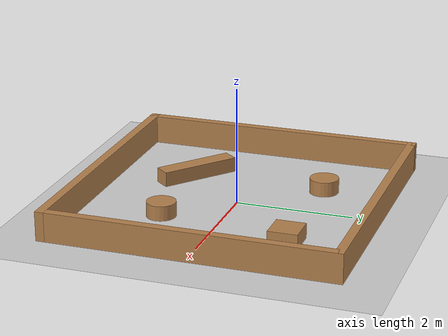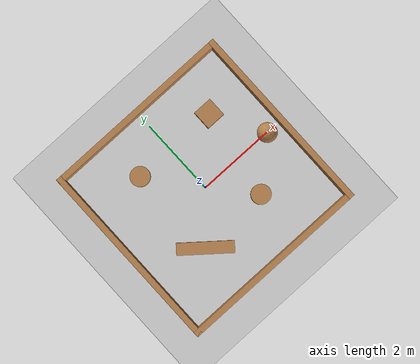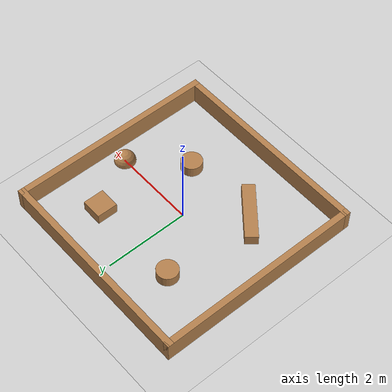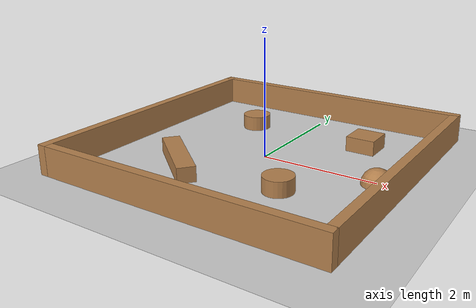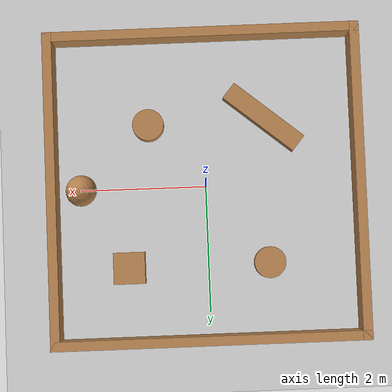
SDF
<sdf version="1.7">
 <world name="default">
  <light name="sun" type="directional">
   <pose>0 0 10 0 -0 0</pose>
   <diffuse>0.8 0.8 0.8 1</diffuse>
   <specular>0.2 0.2 0.2 1</specular>
   <attenuation>
    <range>1000</range>
    <constant>0.9</constant>
    <linear>0.01</linear>
    <quadratic>0.001</quadratic>
   </attenuation>
   <direction>-0.5 0.1 -0.9</direction>
   <spot><inner_angle>0</inner_angle><outer_angle>0</outer_angle><falloff>0</falloff></spot>
  </light>
  <model name="ground_plane">
   <static>1</static>
   <link name="link">
    <collision name="collision">
     <geometry><plane><normal>0 0 1</normal><size>100 100</size></plane></geometry>
     <surface>
      <contact><collide_bitmask>65535</collide_bitmask></contact>
      <friction><ode><mu>100</mu><mu2>50</mu2></ode></friction>
     </surface>
    </collision>
    <visual name="visual">
     <cast_shadows>0</cast_shadows>
     <geometry><plane><normal>0 0 1</normal><size>100 100</size></plane></geometry>
     <material>
      <script><uri>file://media/materials/scripts/gazebo.material</uri><name>Gazebo/Grey</name></script>
     </material>
    </visual>
   </link>
  </model>
  <physics type="ode">
   <real_time_update_rate>1000</real_time_update_rate>
   <max_step_size>0.001</max_step_size>
   <real_time_factor>1</real_time_factor>
   <ode>
    <solver>
     <type>quick</type>
     <iters>150</iters>
     <precon_iters>0</precon_iters>
     <sor>1.4</sor>
     <use_dynamic_moi_rescaling>1</use_dynamic_moi_rescaling>
    </solver>
    <constraints>
     <cfm>1e-05</cfm>
     <erp>0.2</erp>
     <contact_max_correcting_vel>2000</contact_max_correcting_vel>
     <contact_surface_layer>0.01</contact_surface_layer>
    </constraints>
   </ode>
  </physics>
  <model name="turtlebot3_plaza_empty">
   <link name="Wall_1">
    <collision name="Wall_0_Collision">
     <geometry><box><size>5 0.15 0.5</size></box></geometry>
     <pose>0 0 0.25 0 -0 0</pose>
    </collision>
    <visual name="Wall_0_Visual">
     <pose>0 0 0.25 0 -0 0</pose>
     <geometry><box><size>5 0.15 0.5</size></box></geometry>
     <material>
      <script><uri>file://media/materials/scripts/gazebo.material</uri><name>Gazebo/Wood</name></script>
      <ambient>1 1 1 1</ambient>
     </material>
    </visual>
    <pose>-2.425 0 0 0 -0 1.5708</pose>
   </link>
   <link name="Wall_2">
    <collision name="Wall_2_Collision">
     <geometry><box><size>5 0.15 0.5</size></box></geometry>
     <pose>0 0 0.25 0 -0 0</pose>
    </collision>
    <visual name="Wall_2_Visual">
     <pose>0 0 0.25 0 -0 0</pose>
     <geometry><box><size>5 0.15 0.5</size></box></geometry>
     <material>
      <script><uri>file://media/materials/scripts/gazebo.material</uri><name>Gazebo/Wood</name></script>
      <ambient>1 1 1 1</ambient>
     </material>
    </visual>
    <pose>0 2.425 0 0 -0 0</pose>
   </link>
   <link name="Wall_3">
    <collision name="Wall_3_Collision">
     <geometry><box><size>5 0.15 0.5</size></box></geometry>
     <pose>0 0 0.25 0 -0 0</pose>
    </collision>
    <visual name="Wall_3_Visual">
     <pose>0 0 0.25 0 -0 0</pose>
     <geometry><box><size>5 0.15 0.5</size></box></geometry>
     <material>
      <script><uri>file://media/materials/scripts/gazebo.material</uri><name>Gazebo/Wood</name></script>
      <ambient>1 1 1 1</ambient>
     </material>
    </visual>
    <pose>2.425 0 0 0 0 -1.5708</pose>
   </link>
   <link name="Wall_4">
    <collision name="Wall_4_Collision">
     <geometry><box><size>5 0.15 0.5</size></box></geometry>
     <pose>0 0 0.25 0 -0 0</pose>
    </collision>
    <visual name="Wall_4_Visual">
     <pose>0 0 0.25 0 -0 0</pose>
     <geometry><box><size>5 0.15 0.5</size></box></geometry>
     <material>
      <script><uri>file://media/materials/scripts/gazebo.material</uri><name>Gazebo/Wood</name></script>
      <ambient>1 1 1 1</ambient>
     </material>
    </visual>
    <pose>0 -2.425 0 0 -0 3.14159</pose>
   </link>
   <static>1</static>
  </model>
  <scene><ambient>0.4 0.4 0.4 1</ambient><background>0.7 0.7 0.7 1</background><shadows>1</shadows></scene>
  <gravity>0 0 -9.8</gravity>
  <magnetic_field>6e-06 2.3e-05 -4.2e-05</magnetic_field>
  <atmosphere type="adiabatic"/>
  <spherical_coordinates>
   <surface_model>EARTH_WGS84</surface_model>
   <latitude_deg>0</latitude_deg>
   <longitude_deg>0</longitude_deg>
   <elevation>0</elevation>
   <heading_deg>0</heading_deg>
  </spherical_coordinates>
  <model name="stage1_obs">
   <link name="link_1">
    <inertial>
     <mass>1</mass>
     <inertia>
      <ixx>0.166667</ixx>
      <ixy>0</ixy>
      <ixz>0</ixz>
      <iyy>0.166667</iyy>
      <iyz>0</iyz>
      <izz>0.166667</izz>
     </inertia>
    </inertial>
    <pose>0.813929 1.17131 0 0 -0 0</pose>
    <visual name="visual">
     <geometry><box><size>0.5 0.5 0.5</size></box></geometry>
     <material>
      <lighting>1</lighting>
      <script><uri>file://media/materials/scripts/gazebo.material</uri><name>Gazebo/Wood</name></script>
      <shader type="pixel"><normal_map>__default__</normal_map></shader>
      <ambient>0.3 0.3 0.3 1</ambient>
      <diffuse>0.7 0.7 0.7 1</diffuse>
      <specular>0.01 0.01 0.01 1</specular>
      <emissive>0 0 0 1</emissive>
     </material>
    </visual>
    <collision name="collision">
     <geometry><box><size>0.5 0.5 0.5</size></box></geometry>
     <surface>
      <friction>
       <ode><mu>1</mu><mu2>1</mu2><fdir1>0 0 0</fdir1><slip1>0</slip1><slip2>0</slip2></ode>
       <torsional>
        <coefficient>1</coefficient>
        <patch_radius>0</patch_radius>
        <surface_radius>0</surface_radius>
        <use_patch_radius>1</use_patch_radius>
        <ode><slip>0</slip></ode>
       </torsional>
      </friction>
      <bounce><restitution_coefficient>0</restitution_coefficient><threshold>1e+06</threshold></bounce>
      <contact>
       <collide_without_contact>0</collide_without_contact>
       <collide_without_contact_bitmask>1</collide_without_contact_bitmask>
       <collide_bitmask>1</collide_bitmask>
       <ode>
        <soft_cfm>0</soft_cfm>
        <soft_erp>0.2</soft_erp>
        <kp>1e+13</kp>
        <kd>1</kd>
        <max_vel>0.01</max_vel>
        <min_depth>0</min_depth>
       </ode>
       <bullet>
        <split_impulse>1</split_impulse>
        <split_impulse_penetration_threshold>-0.01</split_impulse_penetration_threshold>
        <soft_cfm>0</soft_cfm>
        <soft_erp>0.2</soft_erp>
        <kp>1e+13</kp>
        <kd>1</kd>
       </bullet>
      </contact>
     </surface>
    </collision>
   </link>
   <link name="link_2">
    <inertial>
     <mass>1</mass>
     <inertia><ixx>0.145833</ixx><ixy>0</ixy><ixz>0</ixz><iyy>0.145833</iyy><iyz>0</iyz><izz>0.125</izz></inertia>
    </inertial>
    <pose>0.442032 -1.08976 0 0 -0 0</pose>
    <visual name="visual">
     <geometry><cylinder><radius>0.25</radius><length>0.5</length></cylinder></geometry>
     <material>
      <lighting>1</lighting>
      <script><uri>file://media/materials/scripts/gazebo.material</uri><name>Gazebo/Wood</name></script>
      <shader type="pixel"><normal_map>__default__</normal_map></shader>
      <ambient>0.3 0.3 0.3 1</ambient>
      <diffuse>0.7 0.7 0.7 1</diffuse>
      <specular>0.01 0.01 0.01 1</specular>
      <emissive>0 0 0 1</emissive>
     </material>
    </visual>
    <collision name="collision">
     <geometry><cylinder><radius>0.25</radius><length>0.5</length></cylinder></geometry>
     <surface>
      <friction>
       <ode><mu>1</mu><mu2>1</mu2><fdir1>0 0 0</fdir1><slip1>0</slip1><slip2>0</slip2></ode>
       <torsional>
        <coefficient>1</coefficient>
        <patch_radius>0</patch_radius>
        <surface_radius>0</surface_radius>
        <use_patch_radius>1</use_patch_radius>
        <ode><slip>0</slip></ode>
       </torsional>
      </friction>
      <bounce><restitution_coefficient>0</restitution_coefficient><threshold>1e+06</threshold></bounce>
      <contact>
       <collide_without_contact>0</collide_without_contact>
       <collide_without_contact_bitmask>1</collide_without_contact_bitmask>
       <collide_bitmask>1</collide_bitmask>
       <ode>
        <soft_cfm>0</soft_cfm>
        <soft_erp>0.2</soft_erp>
        <kp>1e+13</kp>
        <kd>1</kd>
        <max_vel>0.01</max_vel>
        <min_depth>0</min_depth>
       </ode>
       <bullet>
        <split_impulse>1</split_impulse>
        <split_impulse_penetration_threshold>-0.01</split_impulse_penetration_threshold>
        <soft_cfm>0</soft_cfm>
        <soft_erp>0.2</soft_erp>
        <kp>1e+13</kp>
        <kd>1</kd>
       </bullet>
      </contact>
     </surface>
    </collision>
   </link>
   <link name="link_3">
    <inertial>
     <mass>1</mass>
     <inertia><ixx>0.145833</ixx><ixy>0</ixy><ixz>0</ixz><iyy>0.145833</iyy><iyz>0</iyz><izz>0.125</izz></inertia>
    </inertial>
    <pose>-1.41518 1.16132 0 0 -0 0</pose>
    <visual name="visual">
     <geometry><cylinder><radius>0.25</radius><length>0.5</length></cylinder></geometry>
     <material>
      <lighting>1</lighting>
      <script><uri>file://media/materials/scripts/gazebo.material</uri><name>Gazebo/Wood</name></script>
      <shader type="pixel"><normal_map>__default__</normal_map></shader>
      <ambient>0.3 0.3 0.3 1</ambient>
      <diffuse>0.7 0.7 0.7 1</diffuse>
      <specular>0.01 0.01 0.01 1</specular>
      <emissive>0 0 0 1</emissive>
     </material>
    </visual>
    <collision name="collision">
     <geometry><cylinder><radius>0.25</radius><length>0.5</length></cylinder></geometry>
     <surface>
      <friction>
       <ode><mu>1</mu><mu2>1</mu2><fdir1>0 0 0</fdir1><slip1>0</slip1><slip2>0</slip2></ode>
       <torsional>
        <coefficient>1</coefficient>
        <patch_radius>0</patch_radius>
        <surface_radius>0</surface_radius>
        <use_patch_radius>1</use_patch_radius>
        <ode><slip>0</slip></ode>
       </torsional>
      </friction>
      <bounce><restitution_coefficient>0</restitution_coefficient><threshold>1e+06</threshold></bounce>
      <contact>
       <collide_without_contact>0</collide_without_contact>
       <collide_without_contact_bitmask>1</collide_without_contact_bitmask>
       <collide_bitmask>1</collide_bitmask>
       <ode>
        <soft_cfm>0</soft_cfm>
        <soft_erp>0.2</soft_erp>
        <kp>1e+13</kp>
        <kd>1</kd>
        <max_vel>0.01</max_vel>
        <min_depth>0</min_depth>
       </ode>
       <bullet>
        <split_impulse>1</split_impulse>
        <split_impulse_penetration_threshold>-0.01</split_impulse_penetration_threshold>
        <soft_cfm>0</soft_cfm>
        <soft_erp>0.2</soft_erp>
        <kp>1e+13</kp>
        <kd>1</kd>
       </bullet>
      </contact>
     </surface>
    </collision>
   </link>
   <link name="link_4">
    <inertial>
     <mass>1</mass>
     <inertia>
      <ixx>0.166667</ixx>
      <ixy>0</ixy>
      <ixz>0</ixz>
      <iyy>0.166667</iyy>
      <iyz>0</iyz>
      <izz>0.166667</izz>
     </inertia>
    </inertial>
    <pose>-1.40027 -1.14889 0 0 -0 0.884496</pose>
    <visual name="visual">
     <geometry><box><size>0.3 1.4 0.5</size></box></geometry>
     <material>
      <lighting>1</lighting>
      <script><uri>file://media/materials/scripts/gazebo.material</uri><name>Gazebo/Wood</name></script>
      <shader type="pixel"><normal_map>__default__</normal_map></shader>
      <ambient>0.3 0.3 0.3 1</ambient>
      <diffuse>0.7 0.7 0.7 1</diffuse>
      <specular>0.01 0.01 0.01 1</specular>
      <emissive>0 0 0 1</emissive>
     </material>
    </visual>
    <collision name="collision">
     <geometry><box><size>0.3 1.4 0.5</size></box></geometry>
     <surface>
      <friction>
       <ode><mu>1</mu><mu2>1</mu2><fdir1>0 0 0</fdir1><slip1>0</slip1><slip2>0</slip2></ode>
       <torsional>
        <coefficient>1</coefficient>
        <patch_radius>0</patch_radius>
        <surface_radius>0</surface_radius>
        <use_patch_radius>1</use_patch_radius>
        <ode><slip>0</slip></ode>
       </torsional>
      </friction>
      <bounce><restitution_coefficient>0</restitution_coefficient><threshold>1e+06</threshold></bounce>
      <contact>
       <collide_without_contact>0</collide_without_contact>
       <collide_without_contact_bitmask>1</collide_without_contact_bitmask>
       <collide_bitmask>1</collide_bitmask>
       <ode>
        <soft_cfm>0</soft_cfm>
        <soft_erp>0.2</soft_erp>
        <kp>1e+13</kp>
        <kd>1</kd>
        <max_vel>0.01</max_vel>
        <min_depth>0</min_depth>
       </ode>
       <bullet>
        <split_impulse>1</split_impulse>
        <split_impulse_penetration_threshold>-0.01</split_impulse_penetration_threshold>
        <soft_cfm>0</soft_cfm>
        <soft_erp>0.2</soft_erp>
        <kp>1e+13</kp>
        <kd>1</kd>
       </bullet>
      </contact>
     </surface>
    </collision>
   </link>
   <link name="link_5">
    <inertial>
     <mass>1</mass>
     <inertia><ixx>0.1</ixx><ixy>0</ixy><ixz>0</ixz><iyy>0.1</iyy><iyz>0</iyz><izz>0.1</izz></inertia>
    </inertial>
    <pose>1.55949 -0.093969 0 0 -0 0</pose>
    <visual name="visual">
     <geometry><sphere><radius>0.25</radius></sphere></geometry>
     <material>
      <lighting>1</lighting>
      <script><uri>file://media/materials/scripts/gazebo.material</uri><name>Gazebo/Wood</name></script>
      <shader type="pixel"><normal_map>__default__</normal_map></shader>
      <ambient>0.3 0.3 0.3 1</ambient>
      <diffuse>0.7 0.7 0.7 1</diffuse>
      <specular>0.01 0.01 0.01 1</specular>
      <emissive>0 0 0 1</emissive>
     </material>
    </visual>
    <collision name="collision">
     <geometry><sphere><radius>0.25</radius></sphere></geometry>
     <surface>
      <friction>
       <ode><mu>1</mu><mu2>1</mu2><fdir1>0 0 0</fdir1><slip1>0</slip1><slip2>0</slip2></ode>
       <torsional>
        <coefficient>1</coefficient>
        <patch_radius>0</patch_radius>
        <surface_radius>0</surface_radius>
        <use_patch_radius>1</use_patch_radius>
        <ode><slip>0</slip></ode>
       </torsional>
      </friction>
      <bounce><restitution_coefficient>0</restitution_coefficient><threshold>1e+06</threshold></bounce>
      <contact>
       <collide_without_contact>0</collide_without_contact>
       <collide_without_contact_bitmask>1</collide_without_contact_bitmask>
       <collide_bitmask>1</collide_bitmask>
       <ode>
        <soft_cfm>0</soft_cfm>
        <soft_erp>0.2</soft_erp>
        <kp>1e+13</kp>
        <kd>1</kd>
        <max_vel>0.01</max_vel>
        <min_depth>0</min_depth>
       </ode>
       <bullet>
        <split_impulse>1</split_impulse>
        <split_impulse_penetration_threshold>-0.01</split_impulse_penetration_threshold>
        <soft_cfm>0</soft_cfm>
        <soft_erp>0.2</soft_erp>
        <kp>1e+13</kp>
        <kd>1</kd>
       </bullet>
      </contact>
     </surface>
    </collision>
   </link>
   <static>1</static>
   <pose>0.442705 0.083969 0 0 -0 0</pose>
  </model>
 </world>
</sdf>
